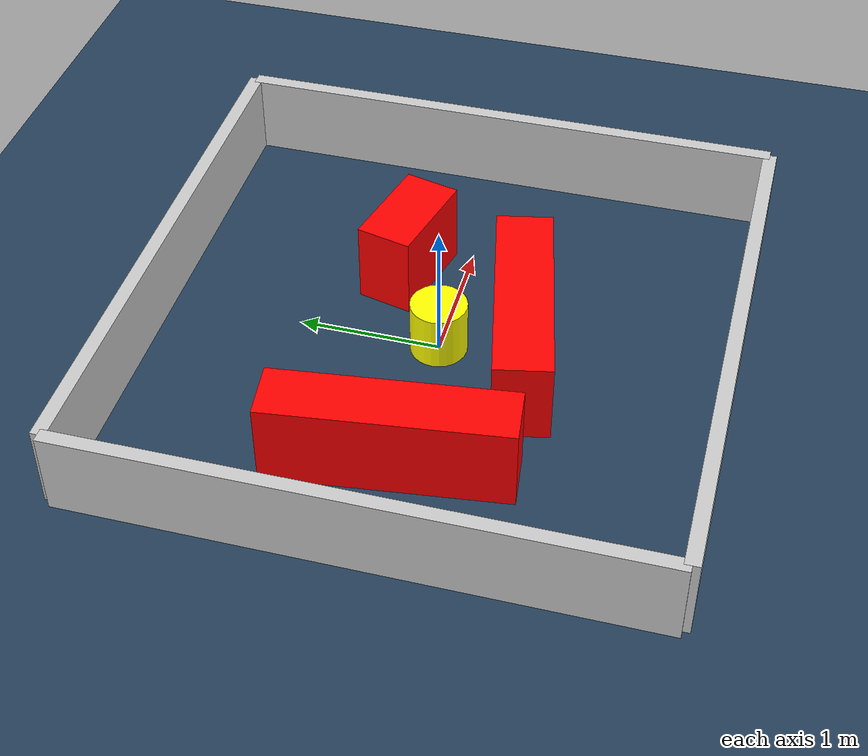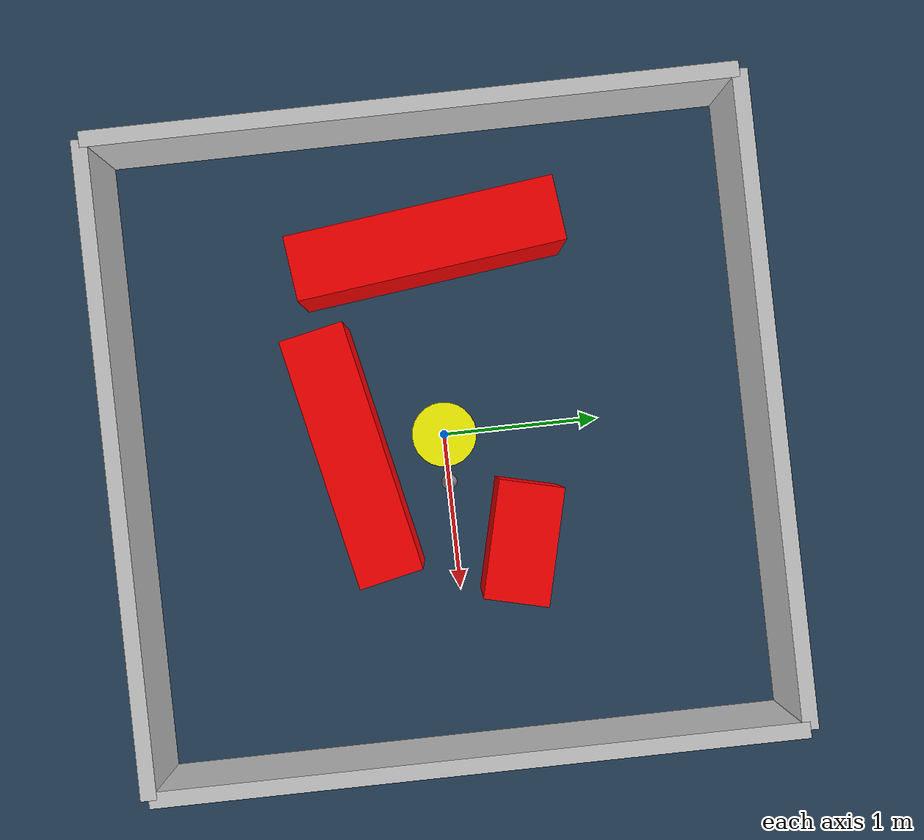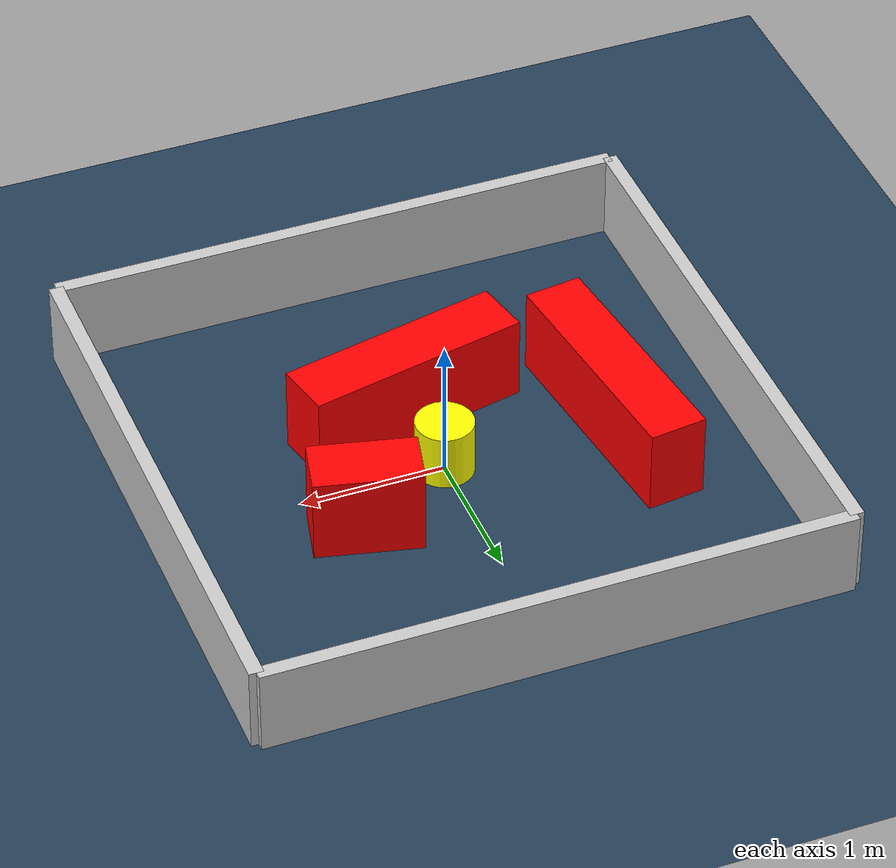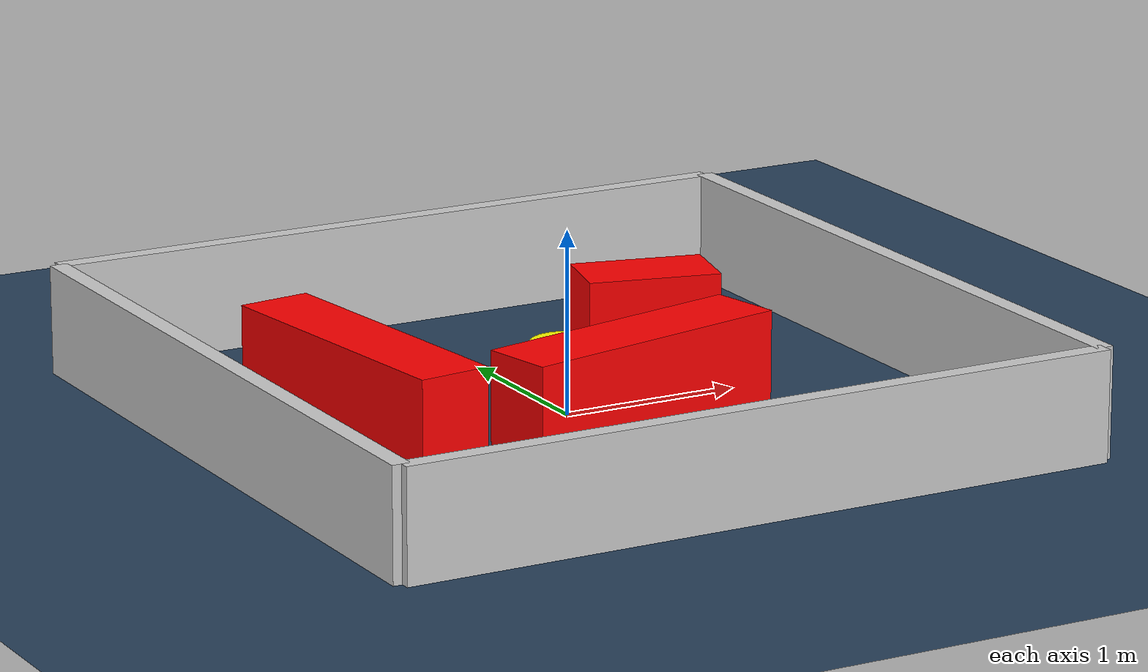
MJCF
<?xml version="1.0" ?>
<mujoco model="generated_environment">
  <option timestep="0.01" integrator="RK4" cone="elliptic"/>
  <default>
    <geom density="1"/>
  </default>
  <asset>
    <texture builtin="gradient" height="3072" rgb1="0.3 0.5 0.7" rgb2="0 0 0" type="skybox" width="512"/>
    <texture builtin="checker" height="300" mark="edge" markrgb="0.8 0.8 0.8" name="groundplane" rgb1="0.2 0.3 0.4" rgb2="0.1 0.2 0.3" type="2d" width="300"/>
    <material name="groundplane" reflectance="0.2" texrepeat="5 5" texture="groundplane" texuniform="true"/>
    <material name="robot" rgba="0.0 1.0 0.0 1"/>
  </asset>
  <worldbody>
    <light dir="0 0 -1" directional="true" pos="0 0 1.5"/>
    <geom condim="4" friction="1.0 0.005 0.001" material="groundplane" name="floor" size="0 0 0.05" type="plane"/>
    <body name="walls">
      <geom name="wall_1" condim="4" pos="-2.0 0.0 0.3" rgba="0.800000011920929 0.800000011920929 0.800000011920929 1.0" size="0.05 2.0 0.3" type="box"/>
      <geom name="wall_2" condim="4" pos="2.0 0.0 0.3" rgba="0.800000011920929 0.800000011920929 0.800000011920929 1.0" size="0.05 2.0 0.3" type="box"/>
      <geom name="wall_3" condim="4" pos="0.0 -2.0 0.3" rgba="0.800000011920929 0.800000011920929 0.800000011920929 1.0" size="2.0 0.05 0.3" type="box"/>
      <geom name="wall_4" condim="4" pos="0.0 2.0 0.3" rgba="0.800000011920929 0.800000011920929 0.800000011920929 1.0" size="2.0 0.05 0.3" type="box"/>
    </body>
    <body name="robot">
      <joint name="joint_x" type="slide" pos="0 0 0" axis="1 0 0"/>
      <joint name="joint_y" type="slide" pos="0 0 0" axis="0 1 0"/>
      <geom name="robot" type="sphere" pos="0.3 0.0 0.2" size="0.05" mass="5." friction="1.0 0.005 0.0001" condim="4" rgba="0.5 0.5 0.5 1.0"/>
      <site name="sensor_ball"/>
    </body>
    <body name="obstacle_movable_1">
      <geom name="obstacle_movable_1" condim="4" pos="0.0 0.0 0.2" euler="0 0 0.0" friction="1.0 0.005 0.001" rgba="1.0 1.0 0.0 1.0" size="0.2 0.2 0.0" type="cylinder" mass="0.1"/>
      <joint type="free"/>
    </body>
    <body name="obstacle_2_static">
      <geom name="obstacle_2_static" condim="4" pos="-1.1881111189478115 0.009844354026719904 0.3" euler="0 0 96.91574817136336" friction="1.0 0.005 0.001" rgba="1 0 0 1" size="0.8317463945776675 0.2 0.3" type="box"/>
    </body>
    <body name="obstacle_3_static">
      <geom name="obstacle_3_static" condim="4" pos="0.06733085032438302 -0.571890128080387 0.3" euler="0 0 12.074417595032557" friction="1.0 0.005 0.001" rgba="1 0 0 1" size="0.7843758540266623 0.2 0.3" type="box"/>
    </body>
    <body name="obstacle_4_static">
      <geom name="obstacle_4_static" condim="4" pos="0.7021218195443915 0.4090050494006079 0.3" euler="0 0 166.38753064058727" friction="1.0 0.005 0.001" rgba="1 0 0 1" size="0.362737263695906 0.2 0.3" type="box"/>
    </body>
  </worldbody>
  <actuator>
    <motor name="actuator_x" joint="joint_x" gear="1" ctrlrange="-1 1"/>
    <motor name="actuator_y" joint="joint_y" gear="1" ctrlrange="-1 1"/>
  </actuator>
</mujoco>
